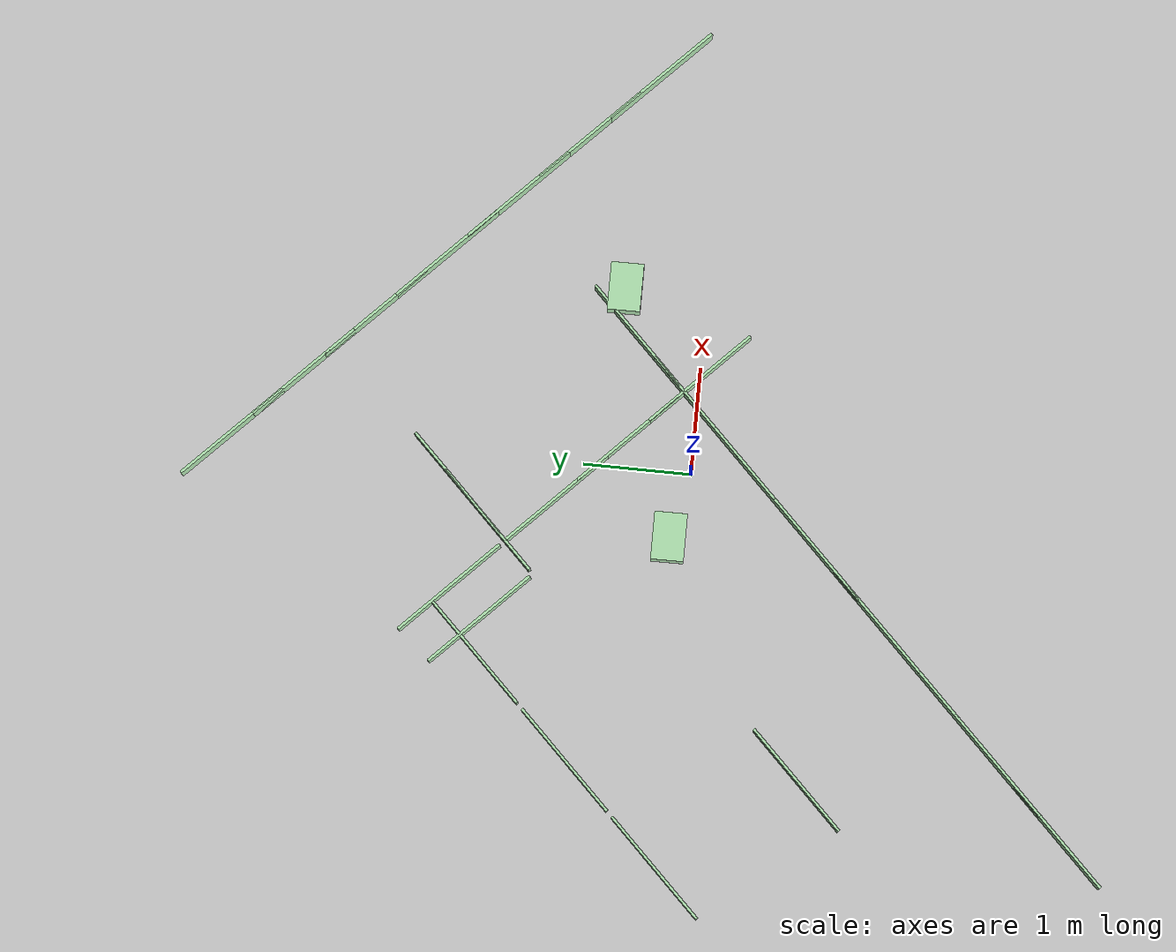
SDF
<?xml version="1.0" encoding="UTF-8"?>
<sdf version="1.4">
  <world name="default">
    <scene>
      <ambient>0.5 0.5 0.5 1</ambient>
      <background>0.5 0.5 0.5 1</background>
      <shadows>false</shadows>
    </scene>
    <physics type="ode">
      <gravity>0 0 -9.81</gravity>
      <ode>
        <solver>
          <type>quick</type>
          <iters>10</iters>
          <sor>1.3</sor>
        </solver>
        <constraints>
          <cfm>0.0</cfm>
          <erp>0.2</erp>
          <contact_max_correcting_vel>100.0</contact_max_correcting_vel>
          <contact_surface_layer>0.001</contact_surface_layer>
        </constraints>
      </ode>
      <real_time_update_rate>1000</real_time_update_rate>
      <max_step_size>0.001</max_step_size>
    </physics>
    <light type="directional" name="directional_light_1">
      <cast_shadows>false</cast_shadows>
      <pose>0 0 30 0.1 0.1 0</pose>
      <diffuse>1.0 1.0 1.0 1</diffuse>
      <specular>.1 .1 .1 1</specular>
      <attenuation>
        <range>300</range>
      </attenuation>
      <direction>0.1 0.1 -1</direction>
    </light>
    <model name='ground_plane'>
      <static>1</static>
      <link name='link'>
        <collision name='collision'>
          <geometry>
            <plane>
              <normal>0 0 1</normal>
              <size>100 100</size>
            </plane>
          </geometry>
          <surface>
            <friction>
              <ode>
                <mu>100</mu>
                <mu2>50</mu2>
              </ode>
              <torsional>
                <ode/>
              </torsional>
            </friction>
            <contact>
              <ode/>
            </contact>
            <bounce/>
          </surface>
          <max_contacts>10</max_contacts>
        </collision>
        <visual name='visual'>
          <cast_shadows>0</cast_shadows>
          <geometry>
            <plane>
              <normal>0 0 1</normal>
              <size>100 100</size>
            </plane>
          </geometry>
          <material>
            <script>
              <uri>file://media/materials/scripts/gazebo.material</uri>
              <name>Gazebo/Grey</name>
            </script>
          </material>
        </visual>
        <self_collide>0</self_collide>
        <kinematic>0</kinematic>
        <gravity>1</gravity>
      </link>
    </model>

<!--______________________________gazebo world______________________________ -->
    <model name="wall_1">
      <static>true</static>
      <link name="wall_1_link">
        <pose> -1.2573000000000003 2.1336  0.15 0 0 0.7853981633974483</pose>
        <collision name="wall_1_collision">
          <geometry>
            <box>
              <size>0.0254 1.2191999999999998 0.3</size>
            </box>
          </geometry>
        </collision>
        <visual name="wall_1_visual">
          <geometry>
            <box>
              <size>0.0254 1.2191999999999998 0.3</size>
            </box>
          </geometry>
          <material>
             <ambient>0.7 0.9 0.7 1.0</ambient>
             <diffuse>0.7 0.9 0.7 1.0</diffuse>
             <specular>0.1 0.1 0.1 1</specular>
             <emissive>0 0 0 0</emissive>
           </material>
        </visual>
      </link>
    </model>

    <model name="wall_2">
      <static>true</static>
      <link name="wall_2_link">
        <pose> -0.3429000000000003 1.2192  0.15 0 0 0.7853981633974483</pose>
        <collision name="wall_2_collision">
          <geometry>
            <box>
              <size>0.0254 1.2191999999999998 0.3</size>
            </box>
          </geometry>
        </collision>
        <visual name="wall_2_visual">
          <geometry>
            <box>
              <size>0.0254 1.2191999999999998 0.3</size>
            </box>
          </geometry>
          <material>
             <ambient>0.7 0.9 0.7 1.0</ambient>
             <diffuse>0.7 0.9 0.7 1.0</diffuse>
             <specular>0.1 0.1 0.1 1</specular>
             <emissive>0 0 0 0</emissive>
           </material>
        </visual>
      </link>
    </model>

    <model name="wall_3">
      <static>true</static>
      <link name="wall_3_link">
        <pose> 0.2666999999999997 0.6096  0.15 0 0 0.7853981633974483</pose>
        <collision name="wall_3_collision">
          <geometry>
            <box>
              <size>0.0254 1.2191999999999998 0.3</size>
            </box>
          </geometry>
        </collision>
        <visual name="wall_3_visual">
          <geometry>
            <box>
              <size>0.0254 1.2191999999999998 0.3</size>
            </box>
          </geometry>
          <material>
             <ambient>0.7 0.9 0.7 1.0</ambient>
             <diffuse>0.7 0.9 0.7 1.0</diffuse>
             <specular>0.1 0.1 0.1 1</specular>
             <emissive>0 0 0 0</emissive>
           </material>
        </visual>
      </link>
    </model>

    <model name="wall_4">
      <static>true</static>
      <link name="wall_4_link">
        <pose> 0.8762999999999997 0.0  0.15 0 0 0.7853981633974483</pose>
        <collision name="wall_4_collision">
          <geometry>
            <box>
              <size>0.0254 1.2191999999999998 0.3</size>
            </box>
          </geometry>
        </collision>
        <visual name="wall_4_visual">
          <geometry>
            <box>
              <size>0.0254 1.2191999999999998 0.3</size>
            </box>
          </geometry>
          <material>
             <ambient>0.7 0.9 0.7 1.0</ambient>
             <diffuse>0.7 0.9 0.7 1.0</diffuse>
             <specular>0.1 0.1 0.1 1</specular>
             <emissive>0 0 0 0</emissive>
           </material>
        </visual>
      </link>
    </model>

    <model name="wall_5">
      <static>true</static>
      <link name="wall_5_link">
        <pose> -2.7432000000000003 -1.2192  0.15 0 0 -0.7853981633974483</pose>
        <collision name="wall_5_collision">
          <geometry>
            <box>
              <size>0.0254 1.2191999999999998 0.3</size>
            </box>
          </geometry>
        </collision>
        <visual name="wall_5_visual">
          <geometry>
            <box>
              <size>0.0254 1.2191999999999998 0.3</size>
            </box>
          </geometry>
          <material>
             <ambient>0.7 0.9 0.7 1.0</ambient>
             <diffuse>0.7 0.9 0.7 1.0</diffuse>
             <specular>0.1 0.1 0.1 1</specular>
             <emissive>0 0 0 0</emissive>
           </material>
        </visual>
      </link>
    </model>

    <model name="wall_6">
      <static>true</static>
      <link name="wall_6_link">
        <pose> -1.524 1.8288000000000002  0.15 0 0 0.7853981633974483</pose>
        <collision name="wall_6_collision">
          <geometry>
            <box>
              <size>0.0254 1.2191999999999998 0.3</size>
            </box>
          </geometry>
        </collision>
        <visual name="wall_6_visual">
          <geometry>
            <box>
              <size>0.0254 1.2191999999999998 0.3</size>
            </box>
          </geometry>
          <material>
             <ambient>0.7 0.9 0.7 1.0</ambient>
             <diffuse>0.7 0.9 0.7 1.0</diffuse>
             <specular>0.1 0.1 0.1 1</specular>
             <emissive>0 0 0 0</emissive>
           </material>
        </visual>
      </link>
    </model>

    <model name="wall_7">
      <static>true</static>
      <link name="wall_7_link">
        <pose> 0.0 4.2672  0.15 0 0 0.7853981633974483</pose>
        <collision name="wall_7_collision">
          <geometry>
            <box>
              <size>0.0254 1.2191999999999998 0.3</size>
            </box>
          </geometry>
        </collision>
        <visual name="wall_7_visual">
          <geometry>
            <box>
              <size>0.0254 1.2191999999999998 0.3</size>
            </box>
          </geometry>
          <material>
             <ambient>0.7 0.9 0.7 1.0</ambient>
             <diffuse>0.7 0.9 0.7 1.0</diffuse>
             <specular>0.1 0.1 0.1 1</specular>
             <emissive>0 0 0 0</emissive>
           </material>
        </visual>
      </link>
    </model>

    <model name="wall_8">
      <static>true</static>
      <link name="wall_8_link">
        <pose> 0.6096 3.6576000000000004  0.15 0 0 0.7853981633974483</pose>
        <collision name="wall_8_collision">
          <geometry>
            <box>
              <size>0.0254 1.2191999999999998 0.3</size>
            </box>
          </geometry>
        </collision>
        <visual name="wall_8_visual">
          <geometry>
            <box>
              <size>0.0254 1.2191999999999998 0.3</size>
            </box>
          </geometry>
          <material>
             <ambient>0.7 0.9 0.7 1.0</ambient>
             <diffuse>0.7 0.9 0.7 1.0</diffuse>
             <specular>0.1 0.1 0.1 1</specular>
             <emissive>0 0 0 0</emissive>
           </material>
        </visual>
      </link>
    </model>

    <model name="wall_9">
      <static>true</static>
      <link name="wall_9_link">
        <pose> 1.2192 3.048  0.15 0 0 0.7853981633974483</pose>
        <collision name="wall_9_collision">
          <geometry>
            <box>
              <size>0.0254 1.2191999999999998 0.3</size>
            </box>
          </geometry>
        </collision>
        <visual name="wall_9_visual">
          <geometry>
            <box>
              <size>0.0254 1.2191999999999998 0.3</size>
            </box>
          </geometry>
          <material>
             <ambient>0.7 0.9 0.7 1.0</ambient>
             <diffuse>0.7 0.9 0.7 1.0</diffuse>
             <specular>0.1 0.1 0.1 1</specular>
             <emissive>0 0 0 0</emissive>
           </material>
        </visual>
      </link>
    </model>

    <model name="wall_10">
      <static>true</static>
      <link name="wall_10_link">
        <pose> 1.8288000000000002 2.4384  0.15 0 0 0.7853981633974483</pose>
        <collision name="wall_10_collision">
          <geometry>
            <box>
              <size>0.0254 1.2191999999999998 0.3</size>
            </box>
          </geometry>
        </collision>
        <visual name="wall_10_visual">
          <geometry>
            <box>
              <size>0.0254 1.2191999999999998 0.3</size>
            </box>
          </geometry>
          <material>
             <ambient>0.7 0.9 0.7 1.0</ambient>
             <diffuse>0.7 0.9 0.7 1.0</diffuse>
             <specular>0.1 0.1 0.1 1</specular>
             <emissive>0 0 0 0</emissive>
           </material>
        </visual>
      </link>
    </model>

    <model name="wall_11">
      <static>true</static>
      <link name="wall_11_link">
        <pose> 2.4384 1.8288000000000002  0.15 0 0 0.7853981633974483</pose>
        <collision name="wall_11_collision">
          <geometry>
            <box>
              <size>0.0254 1.2191999999999998 0.3</size>
            </box>
          </geometry>
        </collision>
        <visual name="wall_11_visual">
          <geometry>
            <box>
              <size>0.0254 1.2191999999999998 0.3</size>
            </box>
          </geometry>
          <material>
             <ambient>0.7 0.9 0.7 1.0</ambient>
             <diffuse>0.7 0.9 0.7 1.0</diffuse>
             <specular>0.1 0.1 0.1 1</specular>
             <emissive>0 0 0 0</emissive>
           </material>
        </visual>
      </link>
    </model>

    <model name="wall_12">
      <static>true</static>
      <link name="wall_12_link">
        <pose> 3.048 1.2192  0.15 0 0 0.7853981633974483</pose>
        <collision name="wall_12_collision">
          <geometry>
            <box>
              <size>0.0254 1.2191999999999998 0.3</size>
            </box>
          </geometry>
        </collision>
        <visual name="wall_12_visual">
          <geometry>
            <box>
              <size>0.0254 1.2191999999999998 0.3</size>
            </box>
          </geometry>
          <material>
             <ambient>0.7 0.9 0.7 1.0</ambient>
             <diffuse>0.7 0.9 0.7 1.0</diffuse>
             <specular>0.1 0.1 0.1 1</specular>
             <emissive>0 0 0 0</emissive>
           </material>
        </visual>
      </link>
    </model>

    <model name="wall_13">
      <static>true</static>
      <link name="wall_13_link">
        <pose> 3.6576000000000004 0.6096  0.15 0 0 0.7853981633974483</pose>
        <collision name="wall_13_collision">
          <geometry>
            <box>
              <size>0.0254 1.2191999999999998 0.3</size>
            </box>
          </geometry>
        </collision>
        <visual name="wall_13_visual">
          <geometry>
            <box>
              <size>0.0254 1.2191999999999998 0.3</size>
            </box>
          </geometry>
          <material>
             <ambient>0.7 0.9 0.7 1.0</ambient>
             <diffuse>0.7 0.9 0.7 1.0</diffuse>
             <specular>0.1 0.1 0.1 1</specular>
             <emissive>0 0 0 0</emissive>
           </material>
        </visual>
      </link>
    </model>

    <model name="wall_14">
      <static>true</static>
      <link name="wall_14_link">
        <pose> -3.048 -3.6576000000000004  0.15 0 0 -0.7853981633974483</pose>
        <collision name="wall_14_collision">
          <geometry>
            <box>
              <size>0.0254 1.2191999999999998 0.3</size>
            </box>
          </geometry>
        </collision>
        <visual name="wall_14_visual">
          <geometry>
            <box>
              <size>0.0254 1.2191999999999998 0.3</size>
            </box>
          </geometry>
          <material>
             <ambient>0.7 0.9 0.7 1.0</ambient>
             <diffuse>0.7 0.9 0.7 1.0</diffuse>
             <specular>0.1 0.1 0.1 1</specular>
             <emissive>0 0 0 0</emissive>
           </material>
        </visual>
      </link>
    </model>

    <model name="wall_15">
      <static>true</static>
      <link name="wall_15_link">
        <pose> -2.4384 -3.048  0.15 0 0 -0.7853981633974483</pose>
        <collision name="wall_15_collision">
          <geometry>
            <box>
              <size>0.0254 1.2191999999999998 0.3</size>
            </box>
          </geometry>
        </collision>
        <visual name="wall_15_visual">
          <geometry>
            <box>
              <size>0.0254 1.2191999999999998 0.3</size>
            </box>
          </geometry>
          <material>
             <ambient>0.7 0.9 0.7 1.0</ambient>
             <diffuse>0.7 0.9 0.7 1.0</diffuse>
             <specular>0.1 0.1 0.1 1</specular>
             <emissive>0 0 0 0</emissive>
           </material>
        </visual>
      </link>
    </model>

    <model name="wall_16">
      <static>true</static>
      <link name="wall_16_link">
        <pose> -1.8288000000000002 -2.4384  0.15 0 0 -0.7853981633974483</pose>
        <collision name="wall_16_collision">
          <geometry>
            <box>
              <size>0.0254 1.2191999999999998 0.3</size>
            </box>
          </geometry>
        </collision>
        <visual name="wall_16_visual">
          <geometry>
            <box>
              <size>0.0254 1.2191999999999998 0.3</size>
            </box>
          </geometry>
          <material>
             <ambient>0.7 0.9 0.7 1.0</ambient>
             <diffuse>0.7 0.9 0.7 1.0</diffuse>
             <specular>0.1 0.1 0.1 1</specular>
             <emissive>0 0 0 0</emissive>
           </material>
        </visual>
      </link>
    </model>

    <model name="wall_17">
      <static>true</static>
      <link name="wall_17_link">
        <pose> -1.2192 -1.8288000000000002  0.15 0 0 -0.7853981633974483</pose>
        <collision name="wall_17_collision">
          <geometry>
            <box>
              <size>0.0254 1.2191999999999998 0.3</size>
            </box>
          </geometry>
        </collision>
        <visual name="wall_17_visual">
          <geometry>
            <box>
              <size>0.0254 1.2191999999999998 0.3</size>
            </box>
          </geometry>
          <material>
             <ambient>0.7 0.9 0.7 1.0</ambient>
             <diffuse>0.7 0.9 0.7 1.0</diffuse>
             <specular>0.1 0.1 0.1 1</specular>
             <emissive>0 0 0 0</emissive>
           </material>
        </visual>
      </link>
    </model>

    <model name="wall_18">
      <static>true</static>
      <link name="wall_18_link">
        <pose> -0.6096 -1.2192  0.15 0 0 -0.7853981633974483</pose>
        <collision name="wall_18_collision">
          <geometry>
            <box>
              <size>0.0254 1.2191999999999998 0.3</size>
            </box>
          </geometry>
        </collision>
        <visual name="wall_18_visual">
          <geometry>
            <box>
              <size>0.0254 1.2191999999999998 0.3</size>
            </box>
          </geometry>
          <material>
             <ambient>0.7 0.9 0.7 1.0</ambient>
             <diffuse>0.7 0.9 0.7 1.0</diffuse>
             <specular>0.1 0.1 0.1 1</specular>
             <emissive>0 0 0 0</emissive>
           </material>
        </visual>
      </link>
    </model>

    <model name="wall_19">
      <static>true</static>
      <link name="wall_19_link">
        <pose> 0.0 -0.6096  0.15 0 0 -0.7853981633974483</pose>
        <collision name="wall_19_collision">
          <geometry>
            <box>
              <size>0.0254 1.2191999999999998 0.3</size>
            </box>
          </geometry>
        </collision>
        <visual name="wall_19_visual">
          <geometry>
            <box>
              <size>0.0254 1.2191999999999998 0.3</size>
            </box>
          </geometry>
          <material>
             <ambient>0.7 0.9 0.7 1.0</ambient>
             <diffuse>0.7 0.9 0.7 1.0</diffuse>
             <specular>0.1 0.1 0.1 1</specular>
             <emissive>0 0 0 0</emissive>
           </material>
        </visual>
      </link>
    </model>

    <model name="wall_20">
      <static>true</static>
      <link name="wall_20_link">
        <pose> 0.6096 0.0  0.15 0 0 -0.7853981633974483</pose>
        <collision name="wall_20_collision">
          <geometry>
            <box>
              <size>0.0254 1.2191999999999998 0.3</size>
            </box>
          </geometry>
        </collision>
        <visual name="wall_20_visual">
          <geometry>
            <box>
              <size>0.0254 1.2191999999999998 0.3</size>
            </box>
          </geometry>
          <material>
             <ambient>0.7 0.9 0.7 1.0</ambient>
             <diffuse>0.7 0.9 0.7 1.0</diffuse>
             <specular>0.1 0.1 0.1 1</specular>
             <emissive>0 0 0 0</emissive>
           </material>
        </visual>
      </link>
    </model>

    <model name="wall_21">
      <static>true</static>
      <link name="wall_21_link">
        <pose> 1.2192 0.6096  0.15 0 0 -0.7853981633974483</pose>
        <collision name="wall_21_collision">
          <geometry>
            <box>
              <size>0.0254 1.2191999999999998 0.3</size>
            </box>
          </geometry>
        </collision>
        <visual name="wall_21_visual">
          <geometry>
            <box>
              <size>0.0254 1.2191999999999998 0.3</size>
            </box>
          </geometry>
          <material>
             <ambient>0.7 0.9 0.7 1.0</ambient>
             <diffuse>0.7 0.9 0.7 1.0</diffuse>
             <specular>0.1 0.1 0.1 1</specular>
             <emissive>0 0 0 0</emissive>
           </material>
        </visual>
      </link>
    </model>

    <model name="wall_22">
      <static>true</static>
      <link name="wall_22_link">
        <pose> -0.29581974387893084 2.142580256121069  0.15 0 0 -0.7853981633974483</pose>
        <collision name="wall_22_collision">
          <geometry>
            <box>
              <size>0.0254 1.2191999999999998 0.3</size>
            </box>
          </geometry>
        </collision>
        <visual name="wall_22_visual">
          <geometry>
            <box>
              <size>0.0254 1.2191999999999998 0.3</size>
            </box>
          </geometry>
          <material>
             <ambient>0.7 0.9 0.7 1.0</ambient>
             <diffuse>0.7 0.9 0.7 1.0</diffuse>
             <specular>0.1 0.1 0.1 1</specular>
             <emissive>0 0 0 0</emissive>
           </material>
        </visual>
      </link>
    </model>

    <model name="wall_23">
      <static>true</static>
      <link name="wall_23_link">
        <pose> -0.6006197438789308 1.8377802561210692  0.15 0 0 -0.7853981633974483</pose>
        <collision name="wall_23_collision">
          <geometry>
            <box>
              <size>0.0254 1.2191999999999998 0.3</size>
            </box>
          </geometry>
        </collision>
        <visual name="wall_23_visual">
          <geometry>
            <box>
              <size>0.0254 1.2191999999999998 0.3</size>
            </box>
          </geometry>
          <material>
             <ambient>0.7 0.9 0.7 1.0</ambient>
             <diffuse>0.7 0.9 0.7 1.0</diffuse>
             <specular>0.1 0.1 0.1 1</specular>
             <emissive>0 0 0 0</emissive>
           </material>
        </visual>
      </link>
    </model>

    <model name="wall_24">
      <static>true</static>
      <link name="wall_24_link">
        <pose> -1.8377802561210692 1.8377802561210692  0.15 0 0 -0.7853981633974483</pose>
        <collision name="wall_24_collision">
          <geometry>
            <box>
              <size>0.0254 1.2191999999999998 0.3</size>
            </box>
          </geometry>
        </collision>
        <visual name="wall_24_visual">
          <geometry>
            <box>
              <size>0.0254 1.2191999999999998 0.3</size>
            </box>
          </geometry>
          <material>
             <ambient>0.7 0.9 0.7 1.0</ambient>
             <diffuse>0.7 0.9 0.7 1.0</diffuse>
             <specular>0.1 0.1 0.1 1</specular>
             <emissive>0 0 0 0</emissive>
           </material>
        </visual>
      </link>
    </model>

    <model name="wall_25">
      <static>true</static>
      <link name="wall_25_link">
        <pose> -2.7521802561210693 0.9233802561210692  0.15 0 0 -0.7853981633974483</pose>
        <collision name="wall_25_collision">
          <geometry>
            <box>
              <size>0.0254 1.2191999999999998 0.3</size>
            </box>
          </geometry>
        </collision>
        <visual name="wall_25_visual">
          <geometry>
            <box>
              <size>0.0254 1.2191999999999998 0.3</size>
            </box>
          </geometry>
          <material>
             <ambient>0.7 0.9 0.7 1.0</ambient>
             <diffuse>0.7 0.9 0.7 1.0</diffuse>
             <specular>0.1 0.1 0.1 1</specular>
             <emissive>0 0 0 0</emissive>
           </material>
        </visual>
      </link>
    </model>

    <model name="wall_26">
      <static>true</static>
      <link name="wall_26_link">
        <pose> -3.6665802561210694 0.008980256121069154  0.15 0 0 -0.7853981633974483</pose>
        <collision name="wall_26_collision">
          <geometry>
            <box>
              <size>0.0254 1.2191999999999998 0.3</size>
            </box>
          </geometry>
        </collision>
        <visual name="wall_26_visual">
          <geometry>
            <box>
              <size>0.0254 1.2191999999999998 0.3</size>
            </box>
          </geometry>
          <material>
             <ambient>0.7 0.9 0.7 1.0</ambient>
             <diffuse>0.7 0.9 0.7 1.0</diffuse>
             <specular>0.1 0.1 0.1 1</specular>
             <emissive>0 0 0 0</emissive>
           </material>
        </visual>
      </link>
    </model>

    <model name="box_1">
      <static>true</static>
      <link name="box_1_link">
        <pose> -0.6096 0.15239999999999998  0.15 0 0 1.5707963267948966</pose>
        <collision name="box_1_collision">
          <geometry>
            <box>
              <size>0.30479999999999996 0.4445 0.3</size>
            </box>
          </geometry>
        </collision>
        <visual name="box_1_visual">
          <geometry>
            <box>
              <size>0.30479999999999996 0.4445 0.3</size>
            </box>
          </geometry>
          <material>
             <ambient>0.7 0.9 0.7 1.0</ambient>
             <diffuse>0.7 0.9 0.7 1.0</diffuse>
             <specular>0.1 0.1 0.1 1</specular>
             <emissive>0 0 0 0</emissive>
           </material>
        </visual>
      </link>
    </model>

    <model name="box_2">
      <static>true</static>
      <link name="box_2_link">
        <pose> 1.6637 0.762  0.15 0 0 1.5707963267948966</pose>
        <collision name="box_2_collision">
          <geometry>
            <box>
              <size>0.30479999999999996 0.4445 0.3</size>
            </box>
          </geometry>
        </collision>
        <visual name="box_2_visual">
          <geometry>
            <box>
              <size>0.30479999999999996 0.4445 0.3</size>
            </box>
          </geometry>
          <material>
             <ambient>0.7 0.9 0.7 1.0</ambient>
             <diffuse>0.7 0.9 0.7 1.0</diffuse>
             <specular>0.1 0.1 0.1 1</specular>
             <emissive>0 0 0 0</emissive>
           </material>
        </visual>
      </link>
    </model>

<!--______________________________gazebo world______________________________ -->

  </world>
</sdf>
